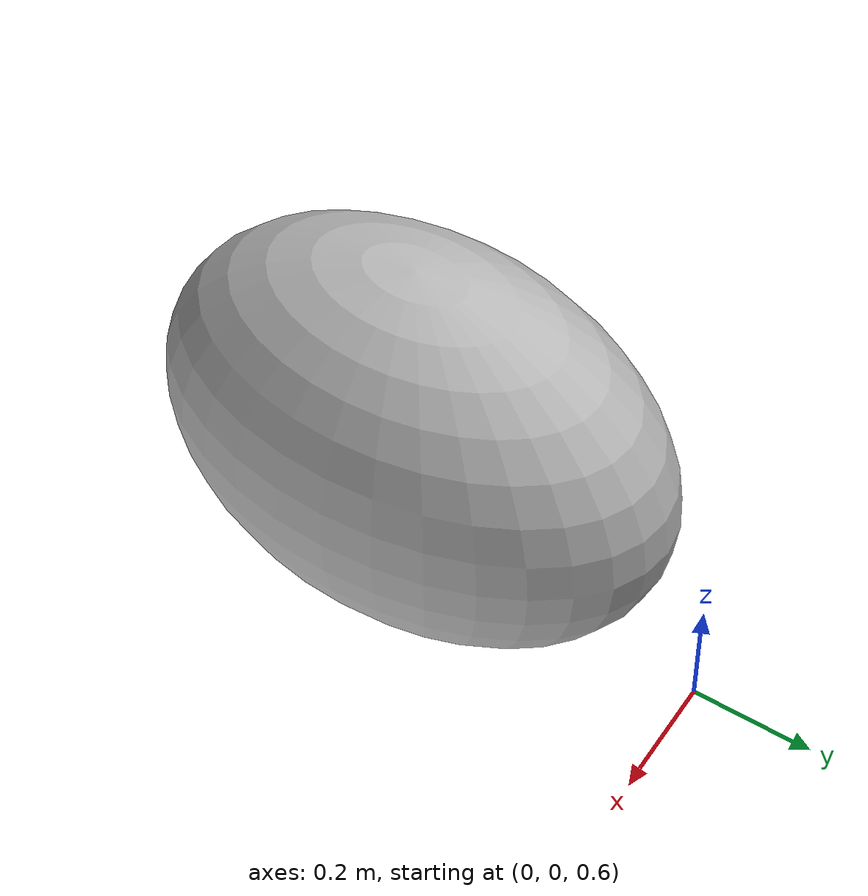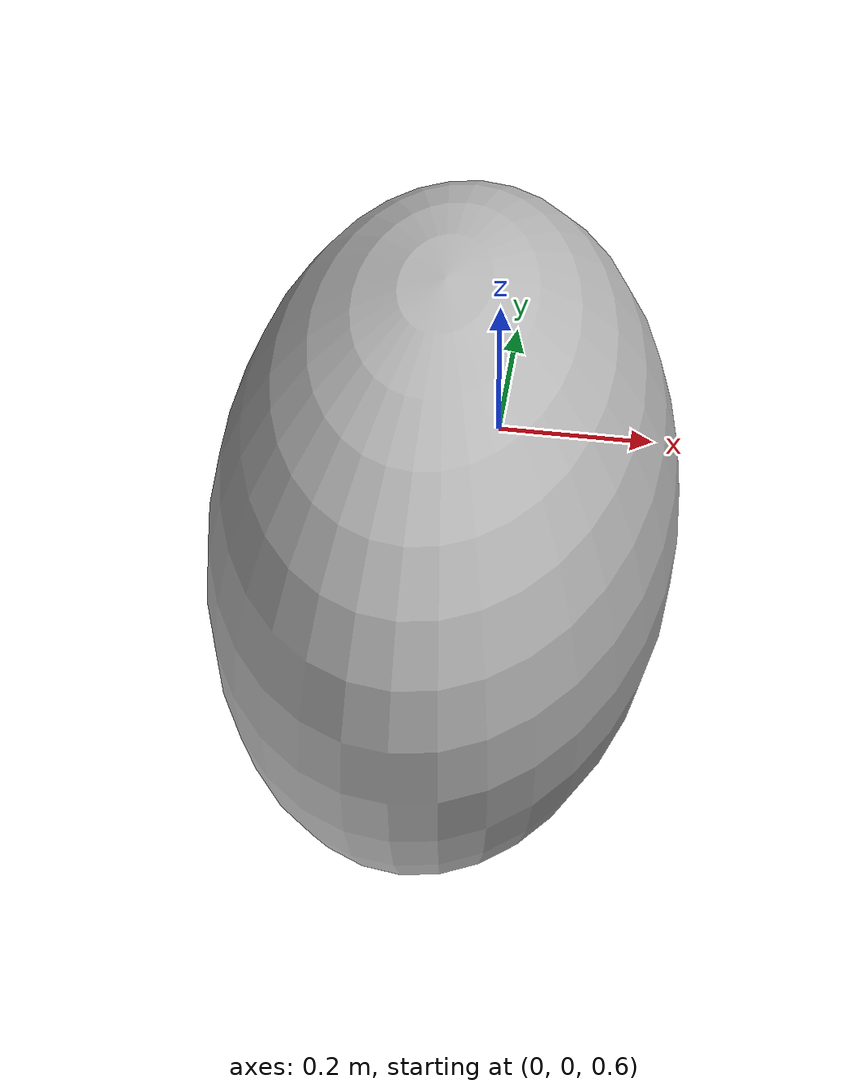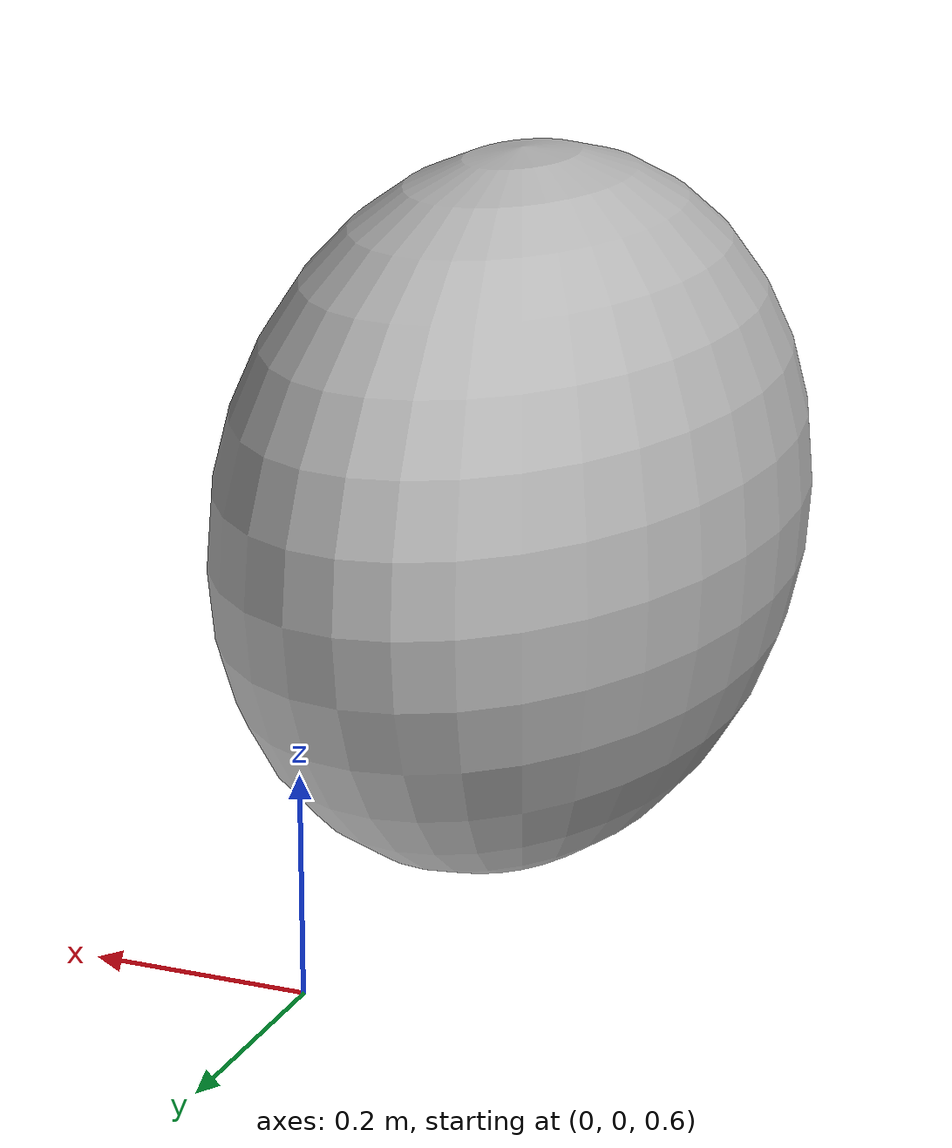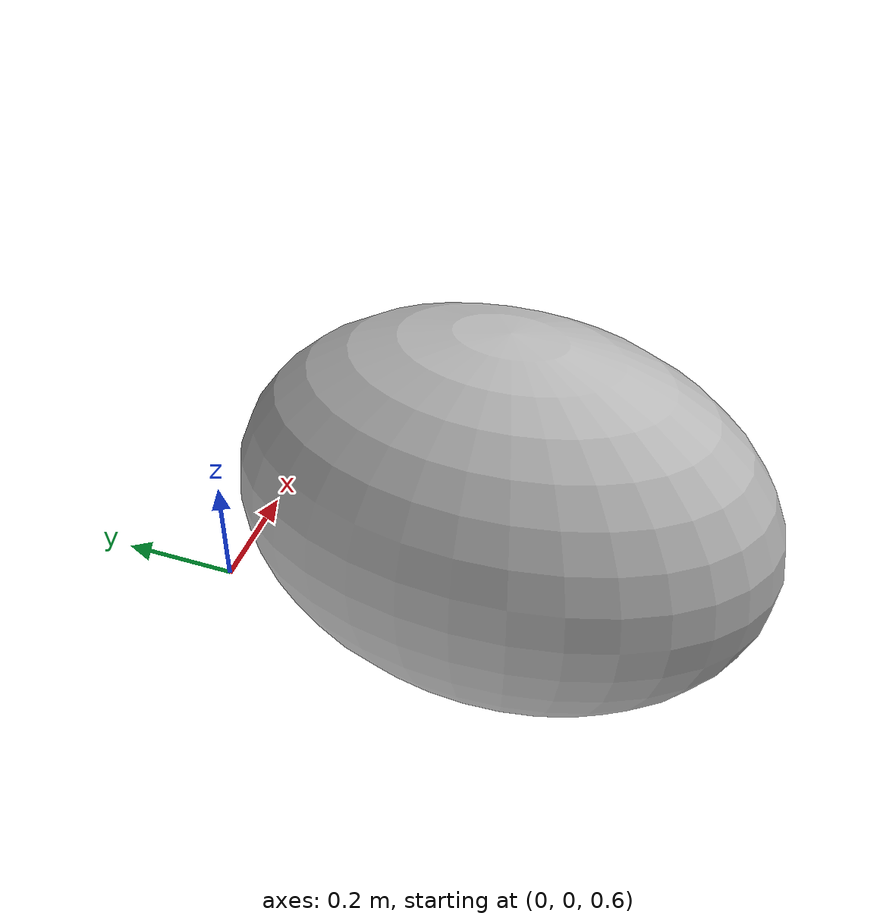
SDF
<?xml version="1.0" ?>
<sdf version="1.4">
  <model name="ellipsoid_obst_1">
    <pose>0.0 -0.5 0.9 0 0 0</pose>
    <static>1</static>
    <link name="ellipsoid_obst_1_link">
      <collision name="ellipsoid_obst_1_link_collision">
	<geometry>
	    <box>
               <size>0.3 0.5 0.4</size>
            </box>
	</geometry>
	<surface>
	   <contact>
	      <ode/>
	   </contact>
	   <friction>
	      <ode/>
	   </friction>
	</surface>
      </collision>
      <visual name="ellipsoid_obst_1_visual">
        <geometry>
	   <mesh>
	     <uri>model://ellipsoid_obst_1/meshes/ellipsoid_obs_1_yaw.stl</uri>
             <scale>1 1 1</scale>
	   </mesh>
        </geometry>
      </visual>
      <self_collide>0</self_collide>
    </link>
  </model>
</sdf>
